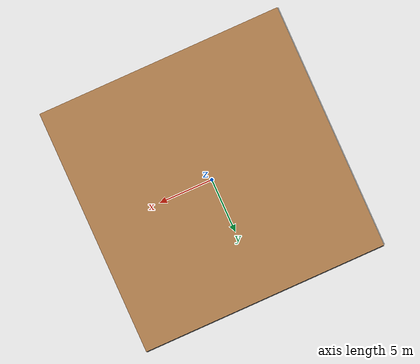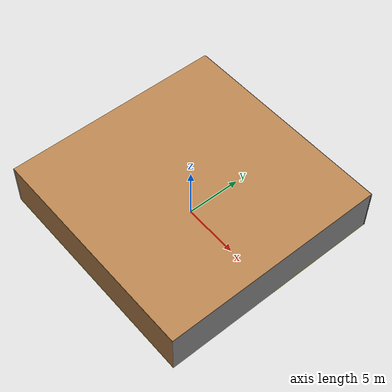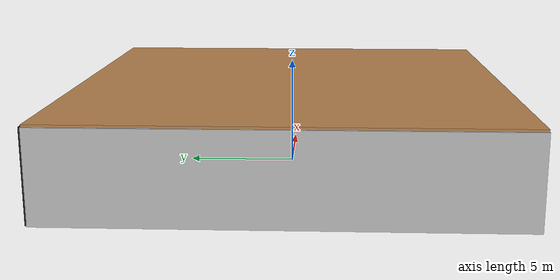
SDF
<sdf version="1.4">
 <world name="default">
  <physics type="ode">
   <max_step_size>0.001</max_step_size>
   <real_time_factor>1</real_time_factor>
   <real_time_update_rate>1000</real_time_update_rate>
   <gravity>0 0 -9.8</gravity>
  </physics>
  <scene><ambient>0.4 0.4 0.4 1</ambient><background>0.7 0.7 0.7 1</background><shadows>1</shadows></scene>
  <model name="Surrounding">
   <static>1</static>
   <link name="Ceiling">
    <collision name="Ceiling_Collision"><geometry><box><size>20 20 0.1</size></box></geometry></collision>
    <visual name="Ceiling_Visual">
     <geometry><box><size>20 20 0.1</size></box></geometry>
     <material>
      <script><uri>file://media/materials/scripts/gazebo.material</uri><name>Gazebo/WoodPallet</name></script>
     </material>
    </visual>
    <pose>0 0 4.05 0 0 0</pose>
   </link>
   <link name="Wall_South">
    <collision name="Wall_South_Collision">
     <geometry><box><size>20 0 4</size></box></geometry>
     <pose>0 0 2 0 -0 0</pose>
    </collision>
    <visual name="Wall_South_Visual">
     <pose>0 0 2 0 -0 0</pose>
     <geometry><box><size>20 0 4</size></box></geometry>
     <material>
      <script><uri>file://media/materials/scripts/gazebo.material</uri><name>Gazebo/WoodFloor</name></script>
     </material>
    </visual>
    <velocity_decay><linear>0</linear><angular>0</angular></velocity_decay>
    <pose>0 -10 0 0 -0 0</pose>
   </link>
   <link name="Wall_East">
    <collision name="Wall_21_Collision">
     <geometry><box><size>20 0 4</size></box></geometry>
     <pose>0 0 2 0 -0 0</pose>
    </collision>
    <visual name="Wall_21_Visual">
     <pose>0 0 2 0 -0 0</pose>
     <geometry><box><size>20 0 4</size></box></geometry>
     <material>
      <script><uri>file://media/materials/scripts/gazebo.material</uri><name>Gazebo/GreyGradientSky</name></script>
     </material>
    </visual>
    <velocity_decay><linear>0</linear><angular>0</angular></velocity_decay>
    <pose>10 0 0 0 -0 1.5708</pose>
   </link>
   <link name="Wall_North">
    <collision name="Wall_22_Collision">
     <geometry><box><size>20 0.2 4</size></box></geometry>
     <pose>0 0 2 0 -0 0</pose>
    </collision>
    <visual name="Wall_22_Visual">
     <pose>0 0 2 0 -0 0</pose>
     <geometry><box><size>20 0.2 4</size></box></geometry>
     <material>
      <script><uri>file://media/materials/scripts/gazebo.material</uri><name>Gazebo/FlatBlack</name></script>
     </material>
    </visual>
    <velocity_decay><linear>0</linear><angular>0</angular></velocity_decay>
    <pose>0 10 0 0 -0 0</pose>
   </link>
   <link name="Wall_West">
    <collision name="Wall_23_Collision">
     <geometry><box><size>20 0.2 4</size></box></geometry>
     <pose>0 0 2 0 -0 0</pose>
    </collision>
    <visual name="Wall_23_Visual">
     <pose>0 0 2 0 -0 0</pose>
     <geometry><box><size>20 0.2 4</size></box></geometry>
     <material>
      <script><uri>file://media/materials/scripts/gazebo.material</uri><name>Gazebo/LightOn</name></script>
     </material>
    </visual>
    <velocity_decay><linear>0</linear><angular>0</angular></velocity_decay>
    <pose>-10 0 0 0 0 -1.5708</pose>
   </link>
   <link name="Ground_link">
    <collision name="collision">
     <pose>0 0 .05 0 -0 0</pose>
     <geometry><box><size>20 20 0.1</size></box></geometry>
    </collision>
    <visual name="visual">
     <pose>0 0 .05 0 -0 0</pose>
     <geometry><box><size>20 20 0.1</size></box></geometry>
     <material>
      <script><uri>file://media/materials/scripts/gazebo.material</uri><name>Gazebo/Yellow</name></script>
     </material>
    </visual>
   </link>
   <static>1</static>
  </model>
  <spherical_coordinates>
   <surface_model>EARTH_WGS84</surface_model>
   <latitude_deg>0</latitude_deg>
   <longitude_deg>0</longitude_deg>
   <elevation>0</elevation>
   <heading_deg>0</heading_deg>
  </spherical_coordinates>
  <light name="lightball_0" type="diffuse">
   <diffuse>0.8 0.8 0.8 1</diffuse>
   <specular>0.2 0.2 0.2 1</specular>
   <attenuation>
    <range>100</range>
    <constant>0.7</constant>
    <linear>0.01</linear>
    <quadratic>0.001</quadratic>
   </attenuation>
   <direction>-0.5 0.1 -0.9</direction>
   <pose>0.911695253041 -1.6064787899 1.6863443529 0 0 0</pose>
  </light>
  <light name="lightball_1" type="diffuse">
   <diffuse>0.8 0.8 0.8 1</diffuse>
   <specular>0.2 0.2 0.2 1</specular>
   <attenuation>
    <range>100</range>
    <constant>0.7</constant>
    <linear>0.01</linear>
    <quadratic>0.001</quadratic>
   </attenuation>
   <direction>-0.5 0.1 -0.9</direction>
   <pose>-1.51912317016 -5.41934880226 1.80810476912 0 0 0</pose>
  </light>
  <light name="lightball_2" type="diffuse">
   <diffuse>0.8 0.8 0.8 1</diffuse>
   <specular>0.2 0.2 0.2 1</specular>
   <attenuation>
    <range>100</range>
    <constant>0.7</constant>
    <linear>0.01</linear>
    <quadratic>0.001</quadratic>
   </attenuation>
   <direction>-0.5 0.1 -0.9</direction>
   <pose>-0.726874870534 -9.62458143655 2.59804078688 0 0 0</pose>
  </light>
  <light name="lightball_3" type="diffuse">
   <diffuse>0.8 0.8 0.8 1</diffuse>
   <specular>0.2 0.2 0.2 1</specular>
   <attenuation>
    <range>100</range>
    <constant>0.7</constant>
    <linear>0.01</linear>
    <quadratic>0.001</quadratic>
   </attenuation>
   <direction>-0.5 0.1 -0.9</direction>
   <pose>-9.41822813362 0.883752040645 2.93390305745 0 0 0</pose>
  </light>
  <light name="lightball_4" type="diffuse">
   <diffuse>0.8 0.8 0.8 1</diffuse>
   <specular>0.2 0.2 0.2 1</specular>
   <attenuation>
    <range>100</range>
    <constant>0.7</constant>
    <linear>0.01</linear>
    <quadratic>0.001</quadratic>
   </attenuation>
   <direction>-0.5 0.1 -0.9</direction>
   <pose>6.26123051041 -3.04828211038 0.5951922622 0 0 0</pose>
  </light>
  <light name="lightball_5" type="diffuse">
   <diffuse>0.8 0.8 0.8 1</diffuse>
   <specular>0.2 0.2 0.2 1</specular>
   <attenuation>
    <range>100</range>
    <constant>0.7</constant>
    <linear>0.01</linear>
    <quadratic>0.001</quadratic>
   </attenuation>
   <direction>-0.5 0.1 -0.9</direction>
   <pose>4.02872434009 5.92144965404 0.636418014106 0 0 0</pose>
  </light>
  <light name="lightball_6" type="diffuse">
   <diffuse>0.8 0.8 0.8 1</diffuse>
   <specular>0.2 0.2 0.2 1</specular>
   <attenuation>
    <range>100</range>
    <constant>0.7</constant>
    <linear>0.01</linear>
    <quadratic>0.001</quadratic>
   </attenuation>
   <direction>-0.5 0.1 -0.9</direction>
   <pose>2.75861757541 -5.65531529752 1.3750513054 0 0 0</pose>
  </light>
  <light name="lightball_7" type="diffuse">
   <diffuse>0.8 0.8 0.8 1</diffuse>
   <specular>0.2 0.2 0.2 1</specular>
   <attenuation>
    <range>100</range>
    <constant>0.7</constant>
    <linear>0.01</linear>
    <quadratic>0.001</quadratic>
   </attenuation>
   <direction>-0.5 0.1 -0.9</direction>
   <pose>-4.51619138024 -9.20188276447 3.83430145393 0 0 0</pose>
  </light>
  <light name="lightball_8" type="diffuse">
   <diffuse>0.8 0.8 0.8 1</diffuse>
   <specular>0.2 0.2 0.2 1</specular>
   <attenuation>
    <range>100</range>
    <constant>0.7</constant>
    <linear>0.01</linear>
    <quadratic>0.001</quadratic>
   </attenuation>
   <direction>-0.5 0.1 -0.9</direction>
   <pose>-4.23108303148 -1.73785411352 0.719194049123 0 0 0</pose>
  </light>
  <light name="lightball_9" type="diffuse">
   <diffuse>0.8 0.8 0.8 1</diffuse>
   <specular>0.2 0.2 0.2 1</specular>
   <attenuation>
    <range>100</range>
    <constant>0.7</constant>
    <linear>0.01</linear>
    <quadratic>0.001</quadratic>
   </attenuation>
   <direction>-0.5 0.1 -0.9</direction>
   <pose>2.33246726221 -6.01469534895 2.39664517003 0 0 0</pose>
  </light>
  <light name="lightball_10" type="diffuse">
   <diffuse>0.8 0.8 0.8 1</diffuse>
   <specular>0.2 0.2 0.2 1</specular>
   <attenuation>
    <range>100</range>
    <constant>0.7</constant>
    <linear>0.01</linear>
    <quadratic>0.001</quadratic>
   </attenuation>
   <direction>-0.5 0.1 -0.9</direction>
   <pose>8.59572660759 -6.39902010626 2.21708226305 0 0 0</pose>
  </light>
  <light name="lightball_11" type="diffuse">
   <diffuse>0.8 0.8 0.8 1</diffuse>
   <specular>0.2 0.2 0.2 1</specular>
   <attenuation>
    <range>100</range>
    <constant>0.7</constant>
    <linear>0.01</linear>
    <quadratic>0.001</quadratic>
   </attenuation>
   <direction>-0.5 0.1 -0.9</direction>
   <pose>-4.54864462201 -7.93224192462 1.32419868396 0 0 0</pose>
  </light>
  <light name="lightball_12" type="diffuse">
   <diffuse>0.8 0.8 0.8 1</diffuse>
   <specular>0.2 0.2 0.2 1</specular>
   <attenuation>
    <range>100</range>
    <constant>0.7</constant>
    <linear>0.01</linear>
    <quadratic>0.001</quadratic>
   </attenuation>
   <direction>-0.5 0.1 -0.9</direction>
   <pose>6.27988597875 0.842438052074 1.5581387457 0 0 0</pose>
  </light>
  <light name="lightball_13" type="diffuse">
   <diffuse>0.8 0.8 0.8 1</diffuse>
   <specular>0.2 0.2 0.2 1</specular>
   <attenuation>
    <range>100</range>
    <constant>0.7</constant>
    <linear>0.01</linear>
    <quadratic>0.001</quadratic>
   </attenuation>
   <direction>-0.5 0.1 -0.9</direction>
   <pose>7.30821720779 9.73426552633 1.63137806414 0 0 0</pose>
  </light>
  <include><uri>model://table</uri><pose>-8.1281155017 -4.63900697701 0 0 0 1.99140923039</pose></include>
  <include>
   <uri>model://textured_shapes</uri>
   <pose>2.01959884184 5.13155956913 0 0 0 2.35109291355</pose>
  </include>
  <include><uri>model://cabinet</uri><pose>2.06048225153 7.93633277351 0 0 0 0.420320255057</pose></include>
  <include><uri>model://cabinet</uri><pose>8.10171621497 -6.74267749134 0 0 0 0.541558600398</pose></include>
 </world>
</sdf>

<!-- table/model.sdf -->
<sdf version="1.5">
  <model name="table">
    <static>true</static>
    <link name="link">
      <collision name="surface">
        <pose>0 0 1.0 0 0 0</pose>
        <geometry>
          <box>
            <size>1.5 0.8 0.03</size>
          </box>
        </geometry>
        <surface>
          <friction>
            <ode>
              <mu>0.6</mu>
              <mu2>0.6</mu2>
            </ode>
          </friction>
        </surface>
      </collision>
      <visual name="visual1">
        <pose>0 0 1.0 0 0 0</pose>
        <geometry>
          <box>
            <size>1.5 0.8 0.03</size>
          </box>
        </geometry>
        <material>
          <script>
            <uri>model://media/materials/scripts/gazebo.material</uri>
            <name>Gazebo/Wood</name>
          </script>
        </material>
      </visual>
      <collision name="front_left_leg">
        <pose>0.68 0.38 0.5 0 0 0</pose>
        <geometry>
          <cylinder>
            <radius>0.02</radius>
            <length>1.0</length>
          </cylinder>
        </geometry>
      </collision>
      <visual name="front_left_leg">
        <pose>0.68 0.38 0.5 0 0 0</pose>
        <geometry>
          <cylinder>
            <radius>0.02</radius>
            <length>1.0</length>
          </cylinder>
        </geometry>
        <material>
          <script>
            <uri>model://media/materials/scripts/gazebo.material</uri>
            <name>Gazebo/Grey</name>
          </script>
        </material>
      </visual>
      <collision name="front_right_leg">
        <pose>0.68 -0.38 0.5 0 0 0</pose>
        <geometry>
          <cylinder>
            <radius>0.02</radius>
            <length>1.0</length>
          </cylinder>
        </geometry>
      </collision>
      <visual name="front_right_leg">
        <pose>0.68 -0.38 0.5 0 0 0</pose>
        <geometry>
          <cylinder>
            <radius>0.02</radius>
            <length>1.0</length>
          </cylinder>
        </geometry>
        <material>
          <script>
            <uri>model://media/materials/scripts/gazebo.material</uri>
            <name>Gazebo/Grey</name>
          </script>
        </material>
      </visual>
      <collision name="back_right_leg">
        <pose>-0.68 -0.38 0.5 0 0 0</pose>
        <geometry>
          <cylinder>
            <radius>0.02</radius>
            <length>1.0</length>
          </cylinder>
        </geometry>
      </collision>
      <visual name="back_right_leg">
        <pose>-0.68 -0.38 0.5 0 0 0</pose>
        <geometry>
          <cylinder>
            <radius>0.02</radius>
            <length>1.0</length>
          </cylinder>
        </geometry>
        <material>
          <script>
            <uri>model://media/materials/scripts/gazebo.material</uri>
            <name>Gazebo/Grey</name>
          </script>
        </material>
      </visual>
      <collision name="back_left_leg">
        <pose>-0.68 0.38 0.5 0 0 0</pose>
        <geometry>
          <cylinder>
            <radius>0.02</radius>
            <length>1.0</length>
          </cylinder>
        </geometry>
      </collision>
      <visual name="back_left_leg">
        <pose>-0.68 0.38 0.5 0 0 0</pose>
        <geometry>
          <cylinder>
            <radius>0.02</radius>
            <length>1.0</length>
          </cylinder>
        </geometry>
        <material>
          <script>
            <uri>model://media/materials/scripts/gazebo.material</uri>
            <name>Gazebo/Grey</name>
          </script>
        </material>
      </visual>
    </link>
  </model>
</sdf>

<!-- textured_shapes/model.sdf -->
<sdf version="1.6">
  <model name="textured_shapes">
    <pose>0 0 0.5 0 0 0</pose>
    <link name="box">
      <pose>0 -1.5 0 0 0 0</pose>
      <collision name="collision">
        <geometry>
          <box>
            <size>1 1 1</size>
          </box>
        </geometry>
      </collision>
      <visual name="visual">
        <geometry>
          <box>
            <size>1 1 1</size>
          </box>
        </geometry>
        <material>
          <script>
            <uri>model://../model_source/models/textured_shapes/materials/scripts</uri>
            <uri>model://../model_source/models/textured_shapes/materials/textures</uri>
            <name>TexturedShape/Squares</name>
          </script>
        </material>
      </visual>
    </link>
    <link name="sphere">
      <collision name="collision">
        <geometry>
          <sphere>
            <radius>0.5</radius>
          </sphere>
        </geometry>
      </collision>
      <visual name="visual">
        <geometry>
          <sphere>
            <radius>0.5</radius>
          </sphere>
        </geometry>
        <material>
          <script>
            <uri>model://../model_source/models/textured_shapes/materials/scripts</uri>
            <uri>model://../model_source/models/textured_shapes/materials/textures</uri>
            <name>TexturedShape/Squares</name>
          </script>
        </material>
      </visual>
    </link>
    <link name="cylinder">
      <pose>0 1.5 0 0 0 0</pose>
      <collision name="collision">
        <geometry>
          <cylinder>
            <radius>0.5</radius>
            <length>1</length>
          </cylinder>
        </geometry>
      </collision>
      <visual name="visual">
        <geometry>
          <cylinder>
            <radius>0.5</radius>
            <length>1</length>
          </cylinder>
        </geometry>
        <material>
          <script>
            <uri>model://../model_source/models/textured_shapes/materials/scripts</uri>
            <uri>model://../model_source/models/textured_shapes/materials/textures</uri>
            <name>TexturedShape/Squares</name>
          </script>
        </material>
      </visual>
    </link>
  </model>
</sdf>

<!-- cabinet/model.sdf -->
<sdf version="1.5">
  <model name="cabinet">
    <static>true</static>
    <link name="cabinet_bottom_plate">
      <inertial>
        <pose>0 0 -1 0 0 0</pose>
        <inertia>
          <ixx>2.050000</ixx>
          <ixy>0</ixy>
          <ixz>0</ixz>
          <iyy>2.050000</iyy>
          <iyz>0</iyz>
          <izz>2.050000</izz>
        </inertia>
        <mass>25.000000</mass>
      </inertial>
      <collision name="cabinet_bottom_plate_geom">
        <pose>0 0 0.010000 0 0 0</pose>
        <geometry>
          <box>
            <size>0.450000 0.450000 0.020000</size>
          </box>
        </geometry>
      </collision>
      <visual name="cabinet_bottom_plate_geom_visual">
        <pose>0 0 0.010000 0 0 0</pose>
        <geometry>
          <box>
            <size>0.450000 0.450000 0.020000</size>
          </box>
        </geometry>
        <material>
          <script>
            <uri>model://media/materials/scripts/gazebo.material</uri>
            <name>Gazebo/Wood</name>
          </script>
        </material>
      </visual>
      <collision name="cabinet_bottom_plate_geom_cabinet_back_plate">
        <pose>0.235000 0 0.510000 0 0 0</pose>
        <geometry>
          <box>
            <size>0.020000 0.450000 1.020000</size>
          </box>
        </geometry>
      </collision>
      <visual name="cabinet_bottom_plate_geom_cabinet_back_plate_visual">
        <pose>0.235000 0 0.510000 0 0 0</pose>
        <geometry>
          <box>
            <size>0.020000 0.450000 1.020000</size>
          </box>
        </geometry>
        <material>
          <script>
            <uri>model://media/materials/scripts/gazebo.material</uri>
            <name>Gazebo/Wood</name>
          </script>
        </material>
      </visual>
      <collision name="cabinet_bottom_plate_geom_cabinet_left_plate">
        <pose>0 0.235000 0.510000 0 0 0</pose>
        <geometry>
          <box>
            <size>0.450000 0.020000 1.020000</size>
          </box>
        </geometry>
      </collision>
      <visual name="cabinet_bottom_plate_geom_cabinet_left_plate_visual">
        <pose>0 0.235000 0.510000 0 0 0</pose>
        <geometry>
          <box>
            <size>0.450000 0.020000 1.020000</size>
          </box>
        </geometry>
        <material>
          <script>
            <uri>model://media/materials/scripts/gazebo.material</uri>
            <name>Gazebo/Wood</name>
          </script>
        </material>
      </visual>
      <collision name="cabinet_bottom_plate_geom_cabinet_middle_plate">
        <pose>0 0 0.510000 0 0 0</pose>
        <geometry>
          <box>
            <size>0.450000 0.450000 0.020000</size>
          </box>
        </geometry>
      </collision>
      <visual name="cabinet_bottom_plate_geom_cabinet_middle_plate_visual">
        <pose>0 0 0.510000 0 0 0</pose>
        <geometry>
          <box>
            <size>0.450000 0.450000 0.020000</size>
          </box>
        </geometry>
        <material>
          <script>
            <uri>model://media/materials/scripts/gazebo.material</uri>
            <name>Gazebo/Wood</name>
          </script>
        </material>
      </visual>
      <collision name="cabinet_bottom_plate_geom_cabinet_right_plate">
        <pose>0 -0.235000 0.510000 0 0 0</pose>
        <geometry>
          <box>
            <size>0.450000 0.020000 1.020000</size>
          </box>
        </geometry>
      </collision>
      <visual name="cabinet_bottom_plate_geom_cabinet_right_plate_visual">
        <pose>0 -0.235000 0.510000 0 0 0</pose>
        <geometry>
          <box>
            <size>0.450000 0.020000 1.020000</size>
          </box>
        </geometry>
        <material>
          <script>
            <uri>model://media/materials/scripts/gazebo.material</uri>
            <name>Gazebo/Wood</name>
          </script>
        </material>
      </visual>
      <collision name="cabinet_bottom_plate_geom_cabinet_top_plate">
        <pose>0 0 1.010000 0 0 0</pose>
        <geometry>
          <box>
            <size>0.450000 0.450000 0.020000</size>
          </box>
        </geometry>
      </collision>
      <visual name="cabinet_bottom_plate_geom_cabinet_top_plate_visual">
        <pose>0 0 1.010000 0 0 0</pose>
        <geometry>
          <box>
            <size>0.450000 0.450000 0.020000</size>
          </box>
        </geometry>
        <material>
          <script>
            <uri>model://media/materials/scripts/gazebo.material</uri>
            <name>Gazebo/Wood</name>
          </script>
        </material>
      </visual>
    </link>
  </model>
</sdf>
